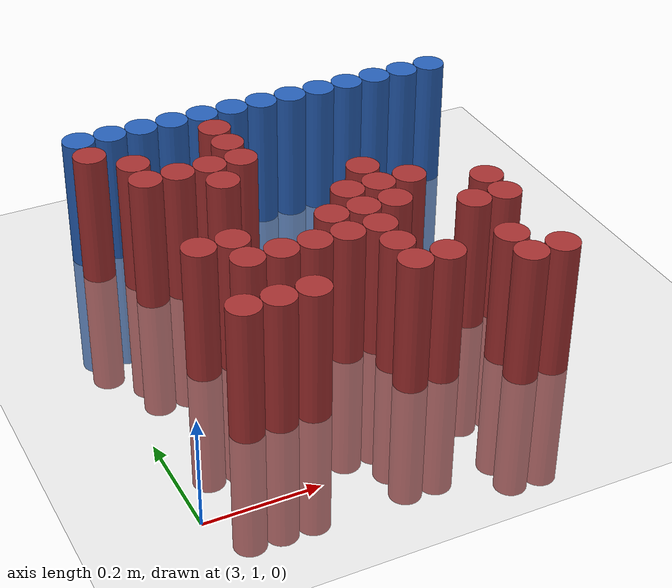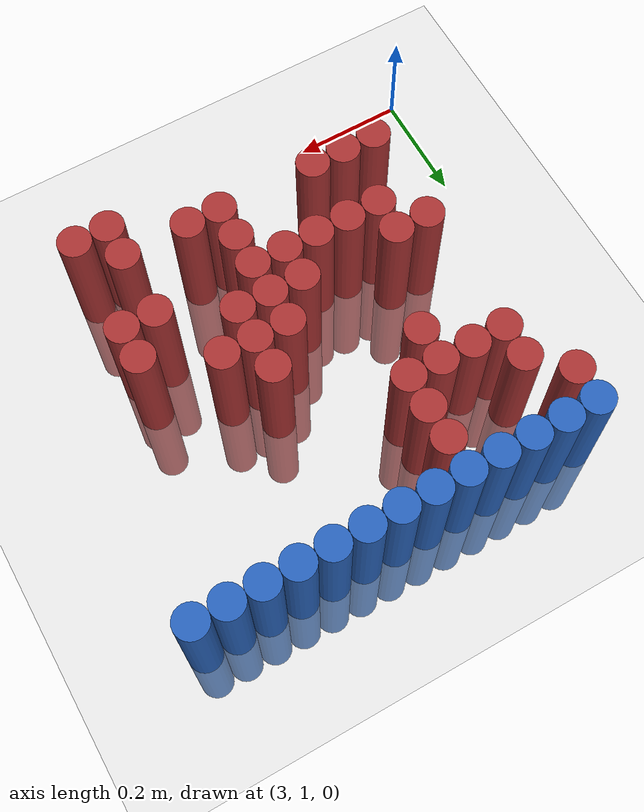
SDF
<sdf version="1.6">
 <world name="default">
  <model name="ground_plane">
   <static>1</static>
   <link name="link">
    <collision name="collision">
     <geometry><plane><normal>0 0 1</normal><size>100 100</size></plane></geometry>
     <surface><friction><ode><mu>100</mu><mu2>50</mu2></ode></friction></surface>
    </collision>
    <visual name="visual">
     <cast_shadows>0</cast_shadows>
     <geometry><plane><normal>0 0 1</normal><size>100 100</size></plane></geometry>
     <material>
      <script><uri>file://media/materials/scripts/gazebo.material</uri><name>Gazebo/Grey</name></script>
     </material>
    </visual>
   </link>
  </model>
  <model name="unit_cylinder_112">
   <static>1</static>
   <pose>3.090000 1.770000 0.000000 0.000000 0.000000 0.000000</pose>
   <link name="link">
    <inertial>
     <mass>1</mass>
     <inertia><ixx>0.145833</ixx><ixy>0</ixy><ixz>0</ixz><iyy>0.145833</iyy><iyz>0</iyz><izz>0.125</izz></inertia>
    </inertial>
    <collision name="collision">
     <geometry><cylinder><radius>0.030000</radius><length>0.5</length></cylinder></geometry>
    </collision>
    <visual name="visual">
     <geometry><cylinder><radius>0.030000</radius><length>0.5</length></cylinder></geometry>
     <material>
      <ambient>0.152000 0.379000 0.720000 1</ambient>
      <diffuse>0.152000 0.379000 0.720000 1</diffuse>
     </material>
     <material>
      <script><name>Gazebo/Grey</name><uri>file://media/materials/scripts/gazebo.material</uri></script>
     </material>
    </visual>
   </link>
  </model>
  <model name="unit_cylinder_113">
   <static>1</static>
   <pose>3.150000 1.770000 0.000000 0.000000 0.000000 0.000000</pose>
   <link name="link">
    <inertial>
     <mass>1</mass>
     <inertia><ixx>0.145833</ixx><ixy>0</ixy><ixz>0</ixz><iyy>0.145833</iyy><iyz>0</iyz><izz>0.125</izz></inertia>
    </inertial>
    <collision name="collision">
     <geometry><cylinder><radius>0.030000</radius><length>0.5</length></cylinder></geometry>
    </collision>
    <visual name="visual">
     <geometry><cylinder><radius>0.030000</radius><length>0.5</length></cylinder></geometry>
     <material>
      <ambient>0.152000 0.379000 0.720000 1</ambient>
      <diffuse>0.152000 0.379000 0.720000 1</diffuse>
     </material>
     <material>
      <script><name>Gazebo/Grey</name><uri>file://media/materials/scripts/gazebo.material</uri></script>
     </material>
    </visual>
   </link>
  </model>
  <model name="unit_cylinder_114">
   <static>1</static>
   <pose>3.210000 1.770000 0.000000 0.000000 0.000000 0.000000</pose>
   <link name="link">
    <inertial>
     <mass>1</mass>
     <inertia><ixx>0.145833</ixx><ixy>0</ixy><ixz>0</ixz><iyy>0.145833</iyy><iyz>0</iyz><izz>0.125</izz></inertia>
    </inertial>
    <collision name="collision">
     <geometry><cylinder><radius>0.030000</radius><length>0.5</length></cylinder></geometry>
    </collision>
    <visual name="visual">
     <geometry><cylinder><radius>0.030000</radius><length>0.5</length></cylinder></geometry>
     <material>
      <ambient>0.152000 0.379000 0.720000 1</ambient>
      <diffuse>0.152000 0.379000 0.720000 1</diffuse>
     </material>
     <material>
      <script><name>Gazebo/Grey</name><uri>file://media/materials/scripts/gazebo.material</uri></script>
     </material>
    </visual>
   </link>
  </model>
  <model name="unit_cylinder_115">
   <static>1</static>
   <pose>3.270000 1.770000 0.000000 0.000000 0.000000 0.000000</pose>
   <link name="link">
    <inertial>
     <mass>1</mass>
     <inertia><ixx>0.145833</ixx><ixy>0</ixy><ixz>0</ixz><iyy>0.145833</iyy><iyz>0</iyz><izz>0.125</izz></inertia>
    </inertial>
    <collision name="collision">
     <geometry><cylinder><radius>0.030000</radius><length>0.5</length></cylinder></geometry>
    </collision>
    <visual name="visual">
     <geometry><cylinder><radius>0.030000</radius><length>0.5</length></cylinder></geometry>
     <material>
      <ambient>0.152000 0.379000 0.720000 1</ambient>
      <diffuse>0.152000 0.379000 0.720000 1</diffuse>
     </material>
     <material>
      <script><name>Gazebo/Grey</name><uri>file://media/materials/scripts/gazebo.material</uri></script>
     </material>
    </visual>
   </link>
  </model>
  <model name="unit_cylinder_116">
   <static>1</static>
   <pose>3.330000 1.770000 0.000000 0.000000 0.000000 0.000000</pose>
   <link name="link">
    <inertial>
     <mass>1</mass>
     <inertia><ixx>0.145833</ixx><ixy>0</ixy><ixz>0</ixz><iyy>0.145833</iyy><iyz>0</iyz><izz>0.125</izz></inertia>
    </inertial>
    <collision name="collision">
     <geometry><cylinder><radius>0.030000</radius><length>0.5</length></cylinder></geometry>
    </collision>
    <visual name="visual">
     <geometry><cylinder><radius>0.030000</radius><length>0.5</length></cylinder></geometry>
     <material>
      <ambient>0.152000 0.379000 0.720000 1</ambient>
      <diffuse>0.152000 0.379000 0.720000 1</diffuse>
     </material>
     <material>
      <script><name>Gazebo/Grey</name><uri>file://media/materials/scripts/gazebo.material</uri></script>
     </material>
    </visual>
   </link>
  </model>
  <model name="unit_cylinder_117">
   <static>1</static>
   <pose>3.390000 1.770000 0.000000 0.000000 0.000000 0.000000</pose>
   <link name="link">
    <inertial>
     <mass>1</mass>
     <inertia><ixx>0.145833</ixx><ixy>0</ixy><ixz>0</ixz><iyy>0.145833</iyy><iyz>0</iyz><izz>0.125</izz></inertia>
    </inertial>
    <collision name="collision">
     <geometry><cylinder><radius>0.030000</radius><length>0.5</length></cylinder></geometry>
    </collision>
    <visual name="visual">
     <geometry><cylinder><radius>0.030000</radius><length>0.5</length></cylinder></geometry>
     <material>
      <ambient>0.152000 0.379000 0.720000 1</ambient>
      <diffuse>0.152000 0.379000 0.720000 1</diffuse>
     </material>
     <material>
      <script><name>Gazebo/Grey</name><uri>file://media/materials/scripts/gazebo.material</uri></script>
     </material>
    </visual>
   </link>
  </model>
  <model name="unit_cylinder_118">
   <static>1</static>
   <pose>3.450000 1.770000 0.000000 0.000000 0.000000 0.000000</pose>
   <link name="link">
    <inertial>
     <mass>1</mass>
     <inertia><ixx>0.145833</ixx><ixy>0</ixy><ixz>0</ixz><iyy>0.145833</iyy><iyz>0</iyz><izz>0.125</izz></inertia>
    </inertial>
    <collision name="collision">
     <geometry><cylinder><radius>0.030000</radius><length>0.5</length></cylinder></geometry>
    </collision>
    <visual name="visual">
     <geometry><cylinder><radius>0.030000</radius><length>0.5</length></cylinder></geometry>
     <material>
      <ambient>0.152000 0.379000 0.720000 1</ambient>
      <diffuse>0.152000 0.379000 0.720000 1</diffuse>
     </material>
     <material>
      <script><name>Gazebo/Grey</name><uri>file://media/materials/scripts/gazebo.material</uri></script>
     </material>
    </visual>
   </link>
  </model>
  <model name="unit_cylinder_119">
   <static>1</static>
   <pose>3.510000 1.770000 0.000000 0.000000 0.000000 0.000000</pose>
   <link name="link">
    <inertial>
     <mass>1</mass>
     <inertia><ixx>0.145833</ixx><ixy>0</ixy><ixz>0</ixz><iyy>0.145833</iyy><iyz>0</iyz><izz>0.125</izz></inertia>
    </inertial>
    <collision name="collision">
     <geometry><cylinder><radius>0.030000</radius><length>0.5</length></cylinder></geometry>
    </collision>
    <visual name="visual">
     <geometry><cylinder><radius>0.030000</radius><length>0.5</length></cylinder></geometry>
     <material>
      <ambient>0.152000 0.379000 0.720000 1</ambient>
      <diffuse>0.152000 0.379000 0.720000 1</diffuse>
     </material>
     <material>
      <script><name>Gazebo/Grey</name><uri>file://media/materials/scripts/gazebo.material</uri></script>
     </material>
    </visual>
   </link>
  </model>
  <model name="unit_cylinder_120">
   <static>1</static>
   <pose>3.570000 1.770000 0.000000 0.000000 0.000000 0.000000</pose>
   <link name="link">
    <inertial>
     <mass>1</mass>
     <inertia><ixx>0.145833</ixx><ixy>0</ixy><ixz>0</ixz><iyy>0.145833</iyy><iyz>0</iyz><izz>0.125</izz></inertia>
    </inertial>
    <collision name="collision">
     <geometry><cylinder><radius>0.030000</radius><length>0.5</length></cylinder></geometry>
    </collision>
    <visual name="visual">
     <geometry><cylinder><radius>0.030000</radius><length>0.5</length></cylinder></geometry>
     <material>
      <ambient>0.152000 0.379000 0.720000 1</ambient>
      <diffuse>0.152000 0.379000 0.720000 1</diffuse>
     </material>
     <material>
      <script><name>Gazebo/Grey</name><uri>file://media/materials/scripts/gazebo.material</uri></script>
     </material>
    </visual>
   </link>
  </model>
  <model name="unit_cylinder_121">
   <static>1</static>
   <pose>3.630000 1.770000 0.000000 0.000000 0.000000 0.000000</pose>
   <link name="link">
    <inertial>
     <mass>1</mass>
     <inertia><ixx>0.145833</ixx><ixy>0</ixy><ixz>0</ixz><iyy>0.145833</iyy><iyz>0</iyz><izz>0.125</izz></inertia>
    </inertial>
    <collision name="collision">
     <geometry><cylinder><radius>0.030000</radius><length>0.5</length></cylinder></geometry>
    </collision>
    <visual name="visual">
     <geometry><cylinder><radius>0.030000</radius><length>0.5</length></cylinder></geometry>
     <material>
      <ambient>0.152000 0.379000 0.720000 1</ambient>
      <diffuse>0.152000 0.379000 0.720000 1</diffuse>
     </material>
     <material>
      <script><name>Gazebo/Grey</name><uri>file://media/materials/scripts/gazebo.material</uri></script>
     </material>
    </visual>
   </link>
  </model>
  <model name="unit_cylinder_122">
   <static>1</static>
   <pose>3.690000 1.770000 0.000000 0.000000 0.000000 0.000000</pose>
   <link name="link">
    <inertial>
     <mass>1</mass>
     <inertia><ixx>0.145833</ixx><ixy>0</ixy><ixz>0</ixz><iyy>0.145833</iyy><iyz>0</iyz><izz>0.125</izz></inertia>
    </inertial>
    <collision name="collision">
     <geometry><cylinder><radius>0.030000</radius><length>0.5</length></cylinder></geometry>
    </collision>
    <visual name="visual">
     <geometry><cylinder><radius>0.030000</radius><length>0.5</length></cylinder></geometry>
     <material>
      <ambient>0.152000 0.379000 0.720000 1</ambient>
      <diffuse>0.152000 0.379000 0.720000 1</diffuse>
     </material>
     <material>
      <script><name>Gazebo/Grey</name><uri>file://media/materials/scripts/gazebo.material</uri></script>
     </material>
    </visual>
   </link>
  </model>
  <model name="unit_cylinder_123">
   <static>1</static>
   <pose>3.750000 1.770000 0.000000 0.000000 0.000000 0.000000</pose>
   <link name="link">
    <inertial>
     <mass>1</mass>
     <inertia><ixx>0.145833</ixx><ixy>0</ixy><ixz>0</ixz><iyy>0.145833</iyy><iyz>0</iyz><izz>0.125</izz></inertia>
    </inertial>
    <collision name="collision">
     <geometry><cylinder><radius>0.030000</radius><length>0.5</length></cylinder></geometry>
    </collision>
    <visual name="visual">
     <geometry><cylinder><radius>0.030000</radius><length>0.5</length></cylinder></geometry>
     <material>
      <ambient>0.152000 0.379000 0.720000 1</ambient>
      <diffuse>0.152000 0.379000 0.720000 1</diffuse>
     </material>
     <material>
      <script><name>Gazebo/Grey</name><uri>file://media/materials/scripts/gazebo.material</uri></script>
     </material>
    </visual>
   </link>
  </model>
  <model name="unit_cylinder_124">
   <static>1</static>
   <pose>3.810000 1.770000 0.000000 0.000000 0.000000 0.000000</pose>
   <link name="link">
    <inertial>
     <mass>1</mass>
     <inertia><ixx>0.145833</ixx><ixy>0</ixy><ixz>0</ixz><iyy>0.145833</iyy><iyz>0</iyz><izz>0.125</izz></inertia>
    </inertial>
    <collision name="collision">
     <geometry><cylinder><radius>0.030000</radius><length>0.5</length></cylinder></geometry>
    </collision>
    <visual name="visual">
     <geometry><cylinder><radius>0.030000</radius><length>0.5</length></cylinder></geometry>
     <material>
      <ambient>0.152000 0.379000 0.720000 1</ambient>
      <diffuse>0.152000 0.379000 0.720000 1</diffuse>
     </material>
     <material>
      <script><name>Gazebo/Grey</name><uri>file://media/materials/scripts/gazebo.material</uri></script>
     </material>
    </visual>
   </link>
  </model>
  <model name="unit_cylinder_132">
   <static>1</static>
   <pose>3.090000 1.710000 0.000000 0.000000 0.000000 0.000000</pose>
   <link name="link">
    <inertial>
     <mass>1</mass>
     <inertia><ixx>0.145833</ixx><ixy>0</ixy><ixz>0</ixz><iyy>0.145833</iyy><iyz>0</iyz><izz>0.125</izz></inertia>
    </inertial>
    <collision name="collision">
     <geometry><cylinder><radius>0.030000</radius><length>0.5</length></cylinder></geometry>
    </collision>
    <visual name="visual">
     <geometry><cylinder><radius>0.030000</radius><length>0.5</length></cylinder></geometry>
     <material>
      <ambient>0.648000 0.192000 0.192000 1</ambient>
      <diffuse>0.648000 0.192000 0.192000 1</diffuse>
     </material>
     <material>
      <script><name>Gazebo/Grey</name><uri>file://media/materials/scripts/gazebo.material</uri></script>
     </material>
    </visual>
   </link>
  </model>
  <model name="unit_cylinder_133">
   <static>1</static>
   <pose>3.330000 1.710000 0.000000 0.000000 0.000000 0.000000</pose>
   <link name="link">
    <inertial>
     <mass>1</mass>
     <inertia><ixx>0.145833</ixx><ixy>0</ixy><ixz>0</ixz><iyy>0.145833</iyy><iyz>0</iyz><izz>0.125</izz></inertia>
    </inertial>
    <collision name="collision">
     <geometry><cylinder><radius>0.030000</radius><length>0.5</length></cylinder></geometry>
    </collision>
    <visual name="visual">
     <geometry><cylinder><radius>0.030000</radius><length>0.5</length></cylinder></geometry>
     <material>
      <ambient>0.648000 0.192000 0.192000 1</ambient>
      <diffuse>0.648000 0.192000 0.192000 1</diffuse>
     </material>
     <material>
      <script><name>Gazebo/Grey</name><uri>file://media/materials/scripts/gazebo.material</uri></script>
     </material>
    </visual>
   </link>
  </model>
  <model name="unit_cylinder_141">
   <static>1</static>
   <pose>3.150000 1.650000 0.000000 0.000000 0.000000 0.000000</pose>
   <link name="link">
    <inertial>
     <mass>1</mass>
     <inertia><ixx>0.145833</ixx><ixy>0</ixy><ixz>0</ixz><iyy>0.145833</iyy><iyz>0</iyz><izz>0.125</izz></inertia>
    </inertial>
    <collision name="collision">
     <geometry><cylinder><radius>0.030000</radius><length>0.5</length></cylinder></geometry>
    </collision>
    <visual name="visual">
     <geometry><cylinder><radius>0.030000</radius><length>0.5</length></cylinder></geometry>
     <material>
      <ambient>0.648000 0.192000 0.192000 1</ambient>
      <diffuse>0.648000 0.192000 0.192000 1</diffuse>
     </material>
     <material>
      <script><name>Gazebo/Grey</name><uri>file://media/materials/scripts/gazebo.material</uri></script>
     </material>
    </visual>
   </link>
  </model>
  <model name="unit_cylinder_142">
   <static>1</static>
   <pose>3.330000 1.650000 0.000000 0.000000 0.000000 0.000000</pose>
   <link name="link">
    <inertial>
     <mass>1</mass>
     <inertia><ixx>0.145833</ixx><ixy>0</ixy><ixz>0</ixz><iyy>0.145833</iyy><iyz>0</iyz><izz>0.125</izz></inertia>
    </inertial>
    <collision name="collision">
     <geometry><cylinder><radius>0.030000</radius><length>0.5</length></cylinder></geometry>
    </collision>
    <visual name="visual">
     <geometry><cylinder><radius>0.030000</radius><length>0.5</length></cylinder></geometry>
     <material>
      <ambient>0.648000 0.192000 0.192000 1</ambient>
      <diffuse>0.648000 0.192000 0.192000 1</diffuse>
     </material>
     <material>
      <script><name>Gazebo/Grey</name><uri>file://media/materials/scripts/gazebo.material</uri></script>
     </material>
    </visual>
   </link>
  </model>
  <model name="unit_cylinder_147">
   <static>1</static>
   <pose>3.150000 1.590000 0.000000 0.000000 0.000000 0.000000</pose>
   <link name="link">
    <inertial>
     <mass>1</mass>
     <inertia><ixx>0.145833</ixx><ixy>0</ixy><ixz>0</ixz><iyy>0.145833</iyy><iyz>0</iyz><izz>0.125</izz></inertia>
    </inertial>
    <collision name="collision">
     <geometry><cylinder><radius>0.030000</radius><length>0.5</length></cylinder></geometry>
    </collision>
    <visual name="visual">
     <geometry><cylinder><radius>0.030000</radius><length>0.5</length></cylinder></geometry>
     <material>
      <ambient>0.648000 0.192000 0.192000 1</ambient>
      <diffuse>0.648000 0.192000 0.192000 1</diffuse>
     </material>
     <material>
      <script><name>Gazebo/Grey</name><uri>file://media/materials/scripts/gazebo.material</uri></script>
     </material>
    </visual>
   </link>
  </model>
  <model name="unit_cylinder_148">
   <static>1</static>
   <pose>3.210000 1.590000 0.000000 0.000000 0.000000 0.000000</pose>
   <link name="link">
    <inertial>
     <mass>1</mass>
     <inertia><ixx>0.145833</ixx><ixy>0</ixy><ixz>0</ixz><iyy>0.145833</iyy><iyz>0</iyz><izz>0.125</izz></inertia>
    </inertial>
    <collision name="collision">
     <geometry><cylinder><radius>0.030000</radius><length>0.5</length></cylinder></geometry>
    </collision>
    <visual name="visual">
     <geometry><cylinder><radius>0.030000</radius><length>0.5</length></cylinder></geometry>
     <material>
      <ambient>0.648000 0.192000 0.192000 1</ambient>
      <diffuse>0.648000 0.192000 0.192000 1</diffuse>
     </material>
     <material>
      <script><name>Gazebo/Grey</name><uri>file://media/materials/scripts/gazebo.material</uri></script>
     </material>
    </visual>
   </link>
  </model>
  <model name="unit_cylinder_149">
   <static>1</static>
   <pose>3.270000 1.590000 0.000000 0.000000 0.000000 0.000000</pose>
   <link name="link">
    <inertial>
     <mass>1</mass>
     <inertia><ixx>0.145833</ixx><ixy>0</ixy><ixz>0</ixz><iyy>0.145833</iyy><iyz>0</iyz><izz>0.125</izz></inertia>
    </inertial>
    <collision name="collision">
     <geometry><cylinder><radius>0.030000</radius><length>0.5</length></cylinder></geometry>
    </collision>
    <visual name="visual">
     <geometry><cylinder><radius>0.030000</radius><length>0.5</length></cylinder></geometry>
     <material>
      <ambient>0.648000 0.192000 0.192000 1</ambient>
      <diffuse>0.648000 0.192000 0.192000 1</diffuse>
     </material>
     <material>
      <script><name>Gazebo/Grey</name><uri>file://media/materials/scripts/gazebo.material</uri></script>
     </material>
    </visual>
   </link>
  </model>
  <model name="unit_cylinder_150">
   <static>1</static>
   <pose>3.330000 1.590000 0.000000 0.000000 0.000000 0.000000</pose>
   <link name="link">
    <inertial>
     <mass>1</mass>
     <inertia><ixx>0.145833</ixx><ixy>0</ixy><ixz>0</ixz><iyy>0.145833</iyy><iyz>0</iyz><izz>0.125</izz></inertia>
    </inertial>
    <collision name="collision">
     <geometry><cylinder><radius>0.030000</radius><length>0.5</length></cylinder></geometry>
    </collision>
    <visual name="visual">
     <geometry><cylinder><radius>0.030000</radius><length>0.5</length></cylinder></geometry>
     <material>
      <ambient>0.648000 0.192000 0.192000 1</ambient>
      <diffuse>0.648000 0.192000 0.192000 1</diffuse>
     </material>
     <material>
      <script><name>Gazebo/Grey</name><uri>file://media/materials/scripts/gazebo.material</uri></script>
     </material>
    </visual>
   </link>
  </model>
  <model name="unit_cylinder_157">
   <static>1</static>
   <pose>3.270000 1.530000 0.000000 0.000000 0.000000 0.000000</pose>
   <link name="link">
    <inertial>
     <mass>1</mass>
     <inertia><ixx>0.145833</ixx><ixy>0</ixy><ixz>0</ixz><iyy>0.145833</iyy><iyz>0</iyz><izz>0.125</izz></inertia>
    </inertial>
    <collision name="collision">
     <geometry><cylinder><radius>0.030000</radius><length>0.5</length></cylinder></geometry>
    </collision>
    <visual name="visual">
     <geometry><cylinder><radius>0.030000</radius><length>0.5</length></cylinder></geometry>
     <material>
      <ambient>0.648000 0.192000 0.192000 1</ambient>
      <diffuse>0.648000 0.192000 0.192000 1</diffuse>
     </material>
     <material>
      <script><name>Gazebo/Grey</name><uri>file://media/materials/scripts/gazebo.material</uri></script>
     </material>
    </visual>
   </link>
  </model>
  <model name="unit_cylinder_167">
   <static>1</static>
   <pose>3.510000 1.470000 0.000000 0.000000 0.000000 0.000000</pose>
   <link name="link">
    <inertial>
     <mass>1</mass>
     <inertia><ixx>0.145833</ixx><ixy>0</ixy><ixz>0</ixz><iyy>0.145833</iyy><iyz>0</iyz><izz>0.125</izz></inertia>
    </inertial>
    <collision name="collision">
     <geometry><cylinder><radius>0.030000</radius><length>0.5</length></cylinder></geometry>
    </collision>
    <visual name="visual">
     <geometry><cylinder><radius>0.030000</radius><length>0.5</length></cylinder></geometry>
     <material>
      <ambient>0.648000 0.192000 0.192000 1</ambient>
      <diffuse>0.648000 0.192000 0.192000 1</diffuse>
     </material>
     <material>
      <script><name>Gazebo/Grey</name><uri>file://media/materials/scripts/gazebo.material</uri></script>
     </material>
    </visual>
   </link>
  </model>
  <model name="unit_cylinder_174">
   <static>1</static>
   <pose>3.450000 1.410000 0.000000 0.000000 0.000000 0.000000</pose>
   <link name="link">
    <inertial>
     <mass>1</mass>
     <inertia><ixx>0.145833</ixx><ixy>0</ixy><ixz>0</ixz><iyy>0.145833</iyy><iyz>0</iyz><izz>0.125</izz></inertia>
    </inertial>
    <collision name="collision">
     <geometry><cylinder><radius>0.030000</radius><length>0.5</length></cylinder></geometry>
    </collision>
    <visual name="visual">
     <geometry><cylinder><radius>0.030000</radius><length>0.5</length></cylinder></geometry>
     <material>
      <ambient>0.648000 0.192000 0.192000 1</ambient>
      <diffuse>0.648000 0.192000 0.192000 1</diffuse>
     </material>
     <material>
      <script><name>Gazebo/Grey</name><uri>file://media/materials/scripts/gazebo.material</uri></script>
     </material>
    </visual>
   </link>
  </model>
  <model name="unit_cylinder_175">
   <static>1</static>
   <pose>3.510000 1.410000 0.000000 0.000000 0.000000 0.000000</pose>
   <link name="link">
    <inertial>
     <mass>1</mass>
     <inertia><ixx>0.145833</ixx><ixy>0</ixy><ixz>0</ixz><iyy>0.145833</iyy><iyz>0</iyz><izz>0.125</izz></inertia>
    </inertial>
    <collision name="collision">
     <geometry><cylinder><radius>0.030000</radius><length>0.5</length></cylinder></geometry>
    </collision>
    <visual name="visual">
     <geometry><cylinder><radius>0.030000</radius><length>0.5</length></cylinder></geometry>
     <material>
      <ambient>0.648000 0.192000 0.192000 1</ambient>
      <diffuse>0.648000 0.192000 0.192000 1</diffuse>
     </material>
     <material>
      <script><name>Gazebo/Grey</name><uri>file://media/materials/scripts/gazebo.material</uri></script>
     </material>
    </visual>
   </link>
  </model>
  <model name="unit_cylinder_176">
   <static>1</static>
   <pose>3.570000 1.410000 0.000000 0.000000 0.000000 0.000000</pose>
   <link name="link">
    <inertial>
     <mass>1</mass>
     <inertia><ixx>0.145833</ixx><ixy>0</ixy><ixz>0</ixz><iyy>0.145833</iyy><iyz>0</iyz><izz>0.125</izz></inertia>
    </inertial>
    <collision name="collision">
     <geometry><cylinder><radius>0.030000</radius><length>0.5</length></cylinder></geometry>
    </collision>
    <visual name="visual">
     <geometry><cylinder><radius>0.030000</radius><length>0.5</length></cylinder></geometry>
     <material>
      <ambient>0.648000 0.192000 0.192000 1</ambient>
      <diffuse>0.648000 0.192000 0.192000 1</diffuse>
     </material>
     <material>
      <script><name>Gazebo/Grey</name><uri>file://media/materials/scripts/gazebo.material</uri></script>
     </material>
    </visual>
   </link>
  </model>
  <model name="unit_cylinder_181">
   <static>1</static>
   <pose>3.150000 1.350000 0.000000 0.000000 0.000000 0.000000</pose>
   <link name="link">
    <inertial>
     <mass>1</mass>
     <inertia><ixx>0.145833</ixx><ixy>0</ixy><ixz>0</ixz><iyy>0.145833</iyy><iyz>0</iyz><izz>0.125</izz></inertia>
    </inertial>
    <collision name="collision">
     <geometry><cylinder><radius>0.030000</radius><length>0.5</length></cylinder></geometry>
    </collision>
    <visual name="visual">
     <geometry><cylinder><radius>0.030000</radius><length>0.5</length></cylinder></geometry>
     <material>
      <ambient>0.648000 0.192000 0.192000 1</ambient>
      <diffuse>0.648000 0.192000 0.192000 1</diffuse>
     </material>
     <material>
      <script><name>Gazebo/Grey</name><uri>file://media/materials/scripts/gazebo.material</uri></script>
     </material>
    </visual>
   </link>
  </model>
  <model name="unit_cylinder_182">
   <static>1</static>
   <pose>3.210000 1.350000 0.000000 0.000000 0.000000 0.000000</pose>
   <link name="link">
    <inertial>
     <mass>1</mass>
     <inertia><ixx>0.145833</ixx><ixy>0</ixy><ixz>0</ixz><iyy>0.145833</iyy><iyz>0</iyz><izz>0.125</izz></inertia>
    </inertial>
    <collision name="collision">
     <geometry><cylinder><radius>0.030000</radius><length>0.5</length></cylinder></geometry>
    </collision>
    <visual name="visual">
     <geometry><cylinder><radius>0.030000</radius><length>0.5</length></cylinder></geometry>
     <material>
      <ambient>0.648000 0.192000 0.192000 1</ambient>
      <diffuse>0.648000 0.192000 0.192000 1</diffuse>
     </material>
     <material>
      <script><name>Gazebo/Grey</name><uri>file://media/materials/scripts/gazebo.material</uri></script>
     </material>
    </visual>
   </link>
  </model>
  <model name="unit_cylinder_183">
   <static>1</static>
   <pose>3.390000 1.350000 0.000000 0.000000 0.000000 0.000000</pose>
   <link name="link">
    <inertial>
     <mass>1</mass>
     <inertia><ixx>0.145833</ixx><ixy>0</ixy><ixz>0</ixz><iyy>0.145833</iyy><iyz>0</iyz><izz>0.125</izz></inertia>
    </inertial>
    <collision name="collision">
     <geometry><cylinder><radius>0.030000</radius><length>0.5</length></cylinder></geometry>
    </collision>
    <visual name="visual">
     <geometry><cylinder><radius>0.030000</radius><length>0.5</length></cylinder></geometry>
     <material>
      <ambient>0.648000 0.192000 0.192000 1</ambient>
      <diffuse>0.648000 0.192000 0.192000 1</diffuse>
     </material>
     <material>
      <script><name>Gazebo/Grey</name><uri>file://media/materials/scripts/gazebo.material</uri></script>
     </material>
    </visual>
   </link>
  </model>
  <model name="unit_cylinder_184">
   <static>1</static>
   <pose>3.450000 1.350000 0.000000 0.000000 0.000000 0.000000</pose>
   <link name="link">
    <inertial>
     <mass>1</mass>
     <inertia><ixx>0.145833</ixx><ixy>0</ixy><ixz>0</ixz><iyy>0.145833</iyy><iyz>0</iyz><izz>0.125</izz></inertia>
    </inertial>
    <collision name="collision">
     <geometry><cylinder><radius>0.030000</radius><length>0.5</length></cylinder></geometry>
    </collision>
    <visual name="visual">
     <geometry><cylinder><radius>0.030000</radius><length>0.5</length></cylinder></geometry>
     <material>
      <ambient>0.648000 0.192000 0.192000 1</ambient>
      <diffuse>0.648000 0.192000 0.192000 1</diffuse>
     </material>
     <material>
      <script><name>Gazebo/Grey</name><uri>file://media/materials/scripts/gazebo.material</uri></script>
     </material>
    </visual>
   </link>
  </model>
  <model name="unit_cylinder_185">
   <static>1</static>
   <pose>3.510000 1.350000 0.000000 0.000000 0.000000 0.000000</pose>
   <link name="link">
    <inertial>
     <mass>1</mass>
     <inertia><ixx>0.145833</ixx><ixy>0</ixy><ixz>0</ixz><iyy>0.145833</iyy><iyz>0</iyz><izz>0.125</izz></inertia>
    </inertial>
    <collision name="collision">
     <geometry><cylinder><radius>0.030000</radius><length>0.5</length></cylinder></geometry>
    </collision>
    <visual name="visual">
     <geometry><cylinder><radius>0.030000</radius><length>0.5</length></cylinder></geometry>
     <material>
      <ambient>0.648000 0.192000 0.192000 1</ambient>
      <diffuse>0.648000 0.192000 0.192000 1</diffuse>
     </material>
     <material>
      <script><name>Gazebo/Grey</name><uri>file://media/materials/scripts/gazebo.material</uri></script>
     </material>
    </visual>
   </link>
  </model>
  <model name="unit_cylinder_186">
   <static>1</static>
   <pose>3.690000 1.350000 0.000000 0.000000 0.000000 0.000000</pose>
   <link name="link">
    <inertial>
     <mass>1</mass>
     <inertia><ixx>0.145833</ixx><ixy>0</ixy><ixz>0</ixz><iyy>0.145833</iyy><iyz>0</iyz><izz>0.125</izz></inertia>
    </inertial>
    <collision name="collision">
     <geometry><cylinder><radius>0.030000</radius><length>0.5</length></cylinder></geometry>
    </collision>
    <visual name="visual">
     <geometry><cylinder><radius>0.030000</radius><length>0.5</length></cylinder></geometry>
     <material>
      <ambient>0.648000 0.192000 0.192000 1</ambient>
      <diffuse>0.648000 0.192000 0.192000 1</diffuse>
     </material>
     <material>
      <script><name>Gazebo/Grey</name><uri>file://media/materials/scripts/gazebo.material</uri></script>
     </material>
    </visual>
   </link>
  </model>
  <model name="unit_cylinder_191">
   <static>1</static>
   <pose>3.210000 1.290000 0.000000 0.000000 0.000000 0.000000</pose>
   <link name="link">
    <inertial>
     <mass>1</mass>
     <inertia><ixx>0.145833</ixx><ixy>0</ixy><ixz>0</ixz><iyy>0.145833</iyy><iyz>0</iyz><izz>0.125</izz></inertia>
    </inertial>
    <collision name="collision">
     <geometry><cylinder><radius>0.030000</radius><length>0.5</length></cylinder></geometry>
    </collision>
    <visual name="visual">
     <geometry><cylinder><radius>0.030000</radius><length>0.5</length></cylinder></geometry>
     <material>
      <ambient>0.648000 0.192000 0.192000 1</ambient>
      <diffuse>0.648000 0.192000 0.192000 1</diffuse>
     </material>
     <material>
      <script><name>Gazebo/Grey</name><uri>file://media/materials/scripts/gazebo.material</uri></script>
     </material>
    </visual>
   </link>
  </model>
  <model name="unit_cylinder_192">
   <static>1</static>
   <pose>3.270000 1.290000 0.000000 0.000000 0.000000 0.000000</pose>
   <link name="link">
    <inertial>
     <mass>1</mass>
     <inertia><ixx>0.145833</ixx><ixy>0</ixy><ixz>0</ixz><iyy>0.145833</iyy><iyz>0</iyz><izz>0.125</izz></inertia>
    </inertial>
    <collision name="collision">
     <geometry><cylinder><radius>0.030000</radius><length>0.5</length></cylinder></geometry>
    </collision>
    <visual name="visual">
     <geometry><cylinder><radius>0.030000</radius><length>0.5</length></cylinder></geometry>
     <material>
      <ambient>0.648000 0.192000 0.192000 1</ambient>
      <diffuse>0.648000 0.192000 0.192000 1</diffuse>
     </material>
     <material>
      <script><name>Gazebo/Grey</name><uri>file://media/materials/scripts/gazebo.material</uri></script>
     </material>
    </visual>
   </link>
  </model>
  <model name="unit_cylinder_193">
   <static>1</static>
   <pose>3.330000 1.290000 0.000000 0.000000 0.000000 0.000000</pose>
   <link name="link">
    <inertial>
     <mass>1</mass>
     <inertia><ixx>0.145833</ixx><ixy>0</ixy><ixz>0</ixz><iyy>0.145833</iyy><iyz>0</iyz><izz>0.125</izz></inertia>
    </inertial>
    <collision name="collision">
     <geometry><cylinder><radius>0.030000</radius><length>0.5</length></cylinder></geometry>
    </collision>
    <visual name="visual">
     <geometry><cylinder><radius>0.030000</radius><length>0.5</length></cylinder></geometry>
     <material>
      <ambient>0.648000 0.192000 0.192000 1</ambient>
      <diffuse>0.648000 0.192000 0.192000 1</diffuse>
     </material>
     <material>
      <script><name>Gazebo/Grey</name><uri>file://media/materials/scripts/gazebo.material</uri></script>
     </material>
    </visual>
   </link>
  </model>
  <model name="unit_cylinder_194">
   <static>1</static>
   <pose>3.390000 1.290000 0.000000 0.000000 0.000000 0.000000</pose>
   <link name="link">
    <inertial>
     <mass>1</mass>
     <inertia><ixx>0.145833</ixx><ixy>0</ixy><ixz>0</ixz><iyy>0.145833</iyy><iyz>0</iyz><izz>0.125</izz></inertia>
    </inertial>
    <collision name="collision">
     <geometry><cylinder><radius>0.030000</radius><length>0.5</length></cylinder></geometry>
    </collision>
    <visual name="visual">
     <geometry><cylinder><radius>0.030000</radius><length>0.5</length></cylinder></geometry>
     <material>
      <ambient>0.648000 0.192000 0.192000 1</ambient>
      <diffuse>0.648000 0.192000 0.192000 1</diffuse>
     </material>
     <material>
      <script><name>Gazebo/Grey</name><uri>file://media/materials/scripts/gazebo.material</uri></script>
     </material>
    </visual>
   </link>
  </model>
  <model name="unit_cylinder_195">
   <static>1</static>
   <pose>3.450000 1.290000 0.000000 0.000000 0.000000 0.000000</pose>
   <link name="link">
    <inertial>
     <mass>1</mass>
     <inertia><ixx>0.145833</ixx><ixy>0</ixy><ixz>0</ixz><iyy>0.145833</iyy><iyz>0</iyz><izz>0.125</izz></inertia>
    </inertial>
    <collision name="collision">
     <geometry><cylinder><radius>0.030000</radius><length>0.5</length></cylinder></geometry>
    </collision>
    <visual name="visual">
     <geometry><cylinder><radius>0.030000</radius><length>0.5</length></cylinder></geometry>
     <material>
      <ambient>0.648000 0.192000 0.192000 1</ambient>
      <diffuse>0.648000 0.192000 0.192000 1</diffuse>
     </material>
     <material>
      <script><name>Gazebo/Grey</name><uri>file://media/materials/scripts/gazebo.material</uri></script>
     </material>
    </visual>
   </link>
  </model>
  <model name="unit_cylinder_196">
   <static>1</static>
   <pose>3.630000 1.290000 0.000000 0.000000 0.000000 0.000000</pose>
   <link name="link">
    <inertial>
     <mass>1</mass>
     <inertia><ixx>0.145833</ixx><ixy>0</ixy><ixz>0</ixz><iyy>0.145833</iyy><iyz>0</iyz><izz>0.125</izz></inertia>
    </inertial>
    <collision name="collision">
     <geometry><cylinder><radius>0.030000</radius><length>0.5</length></cylinder></geometry>
    </collision>
    <visual name="visual">
     <geometry><cylinder><radius>0.030000</radius><length>0.5</length></cylinder></geometry>
     <material>
      <ambient>0.648000 0.192000 0.192000 1</ambient>
      <diffuse>0.648000 0.192000 0.192000 1</diffuse>
     </material>
     <material>
      <script><name>Gazebo/Grey</name><uri>file://media/materials/scripts/gazebo.material</uri></script>
     </material>
    </visual>
   </link>
  </model>
  <model name="unit_cylinder_197">
   <static>1</static>
   <pose>3.690000 1.290000 0.000000 0.000000 0.000000 0.000000</pose>
   <link name="link">
    <inertial>
     <mass>1</mass>
     <inertia><ixx>0.145833</ixx><ixy>0</ixy><ixz>0</ixz><iyy>0.145833</iyy><iyz>0</iyz><izz>0.125</izz></inertia>
    </inertial>
    <collision name="collision">
     <geometry><cylinder><radius>0.030000</radius><length>0.5</length></cylinder></geometry>
    </collision>
    <visual name="visual">
     <geometry><cylinder><radius>0.030000</radius><length>0.5</length></cylinder></geometry>
     <material>
      <ambient>0.648000 0.192000 0.192000 1</ambient>
      <diffuse>0.648000 0.192000 0.192000 1</diffuse>
     </material>
     <material>
      <script><name>Gazebo/Grey</name><uri>file://media/materials/scripts/gazebo.material</uri></script>
     </material>
    </visual>
   </link>
  </model>
  <model name="unit_cylinder_200">
   <static>1</static>
   <pose>3.450000 1.230000 0.000000 0.000000 0.000000 0.000000</pose>
   <link name="link">
    <inertial>
     <mass>1</mass>
     <inertia><ixx>0.145833</ixx><ixy>0</ixy><ixz>0</ixz><iyy>0.145833</iyy><iyz>0</iyz><izz>0.125</izz></inertia>
    </inertial>
    <collision name="collision">
     <geometry><cylinder><radius>0.030000</radius><length>0.5</length></cylinder></geometry>
    </collision>
    <visual name="visual">
     <geometry><cylinder><radius>0.030000</radius><length>0.5</length></cylinder></geometry>
     <material>
      <ambient>0.648000 0.192000 0.192000 1</ambient>
      <diffuse>0.648000 0.192000 0.192000 1</diffuse>
     </material>
     <material>
      <script><name>Gazebo/Grey</name><uri>file://media/materials/scripts/gazebo.material</uri></script>
     </material>
    </visual>
   </link>
  </model>
  <model name="unit_cylinder_202">
   <static>1</static>
   <pose>3.150000 1.170000 0.000000 0.000000 0.000000 0.000000</pose>
   <link name="link">
    <inertial>
     <mass>1</mass>
     <inertia><ixx>0.145833</ixx><ixy>0</ixy><ixz>0</ixz><iyy>0.145833</iyy><iyz>0</iyz><izz>0.125</izz></inertia>
    </inertial>
    <collision name="collision">
     <geometry><cylinder><radius>0.030000</radius><length>0.5</length></cylinder></geometry>
    </collision>
    <visual name="visual">
     <geometry><cylinder><radius>0.030000</radius><length>0.5</length></cylinder></geometry>
     <material>
      <ambient>0.648000 0.192000 0.192000 1</ambient>
      <diffuse>0.648000 0.192000 0.192000 1</diffuse>
     </material>
     <material>
      <script><name>Gazebo/Grey</name><uri>file://media/materials/scripts/gazebo.material</uri></script>
     </material>
    </visual>
   </link>
  </model>
  <model name="unit_cylinder_203">
   <static>1</static>
   <pose>3.210000 1.170000 0.000000 0.000000 0.000000 0.000000</pose>
   <link name="link">
    <inertial>
     <mass>1</mass>
     <inertia><ixx>0.145833</ixx><ixy>0</ixy><ixz>0</ixz><iyy>0.145833</iyy><iyz>0</iyz><izz>0.125</izz></inertia>
    </inertial>
    <collision name="collision">
     <geometry><cylinder><radius>0.030000</radius><length>0.5</length></cylinder></geometry>
    </collision>
    <visual name="visual">
     <geometry><cylinder><radius>0.030000</radius><length>0.5</length></cylinder></geometry>
     <material>
      <ambient>0.648000 0.192000 0.192000 1</ambient>
      <diffuse>0.648000 0.192000 0.192000 1</diffuse>
     </material>
     <material>
      <script><name>Gazebo/Grey</name><uri>file://media/materials/scripts/gazebo.material</uri></script>
     </material>
    </visual>
   </link>
  </model>
  <model name="unit_cylinder_204">
   <static>1</static>
   <pose>3.270000 1.170000 0.000000 0.000000 0.000000 0.000000</pose>
   <link name="link">
    <inertial>
     <mass>1</mass>
     <inertia><ixx>0.145833</ixx><ixy>0</ixy><ixz>0</ixz><iyy>0.145833</iyy><iyz>0</iyz><izz>0.125</izz></inertia>
    </inertial>
    <collision name="collision">
     <geometry><cylinder><radius>0.030000</radius><length>0.5</length></cylinder></geometry>
    </collision>
    <visual name="visual">
     <geometry><cylinder><radius>0.030000</radius><length>0.5</length></cylinder></geometry>
     <material>
      <ambient>0.648000 0.192000 0.192000 1</ambient>
      <diffuse>0.648000 0.192000 0.192000 1</diffuse>
     </material>
     <material>
      <script><name>Gazebo/Grey</name><uri>file://media/materials/scripts/gazebo.material</uri></script>
     </material>
    </visual>
   </link>
  </model>
  <model name="unit_cylinder_205">
   <static>1</static>
   <pose>3.450000 1.170000 0.000000 0.000000 0.000000 0.000000</pose>
   <link name="link">
    <inertial>
     <mass>1</mass>
     <inertia><ixx>0.145833</ixx><ixy>0</ixy><ixz>0</ixz><iyy>0.145833</iyy><iyz>0</iyz><izz>0.125</izz></inertia>
    </inertial>
    <collision name="collision">
     <geometry><cylinder><radius>0.030000</radius><length>0.5</length></cylinder></geometry>
    </collision>
    <visual name="visual">
     <geometry><cylinder><radius>0.030000</radius><length>0.5</length></cylinder></geometry>
     <material>
      <ambient>0.648000 0.192000 0.192000 1</ambient>
      <diffuse>0.648000 0.192000 0.192000 1</diffuse>
     </material>
     <material>
      <script><name>Gazebo/Grey</name><uri>file://media/materials/scripts/gazebo.material</uri></script>
     </material>
    </visual>
   </link>
  </model>
  <model name="unit_cylinder_206">
   <static>1</static>
   <pose>3.510000 1.170000 0.000000 0.000000 0.000000 0.000000</pose>
   <link name="link">
    <inertial>
     <mass>1</mass>
     <inertia><ixx>0.145833</ixx><ixy>0</ixy><ixz>0</ixz><iyy>0.145833</iyy><iyz>0</iyz><izz>0.125</izz></inertia>
    </inertial>
    <collision name="collision">
     <geometry><cylinder><radius>0.030000</radius><length>0.5</length></cylinder></geometry>
    </collision>
    <visual name="visual">
     <geometry><cylinder><radius>0.030000</radius><length>0.5</length></cylinder></geometry>
     <material>
      <ambient>0.648000 0.192000 0.192000 1</ambient>
      <diffuse>0.648000 0.192000 0.192000 1</diffuse>
     </material>
     <material>
      <script><name>Gazebo/Grey</name><uri>file://media/materials/scripts/gazebo.material</uri></script>
     </material>
    </visual>
   </link>
  </model>
  <model name="unit_cylinder_207">
   <static>1</static>
   <pose>3.630000 1.170000 0.000000 0.000000 0.000000 0.000000</pose>
   <link name="link">
    <inertial>
     <mass>1</mass>
     <inertia><ixx>0.145833</ixx><ixy>0</ixy><ixz>0</ixz><iyy>0.145833</iyy><iyz>0</iyz><izz>0.125</izz></inertia>
    </inertial>
    <collision name="collision">
     <geometry><cylinder><radius>0.030000</radius><length>0.5</length></cylinder></geometry>
    </collision>
    <visual name="visual">
     <geometry><cylinder><radius>0.030000</radius><length>0.5</length></cylinder></geometry>
     <material>
      <ambient>0.648000 0.192000 0.192000 1</ambient>
      <diffuse>0.648000 0.192000 0.192000 1</diffuse>
     </material>
     <material>
      <script><name>Gazebo/Grey</name><uri>file://media/materials/scripts/gazebo.material</uri></script>
     </material>
    </visual>
   </link>
  </model>
  <model name="unit_cylinder_213">
   <static>1</static>
   <pose>3.630000 1.110000 0.000000 0.000000 0.000000 0.000000</pose>
   <link name="link">
    <inertial>
     <mass>1</mass>
     <inertia><ixx>0.145833</ixx><ixy>0</ixy><ixz>0</ixz><iyy>0.145833</iyy><iyz>0</iyz><izz>0.125</izz></inertia>
    </inertial>
    <collision name="collision">
     <geometry><cylinder><radius>0.030000</radius><length>0.5</length></cylinder></geometry>
    </collision>
    <visual name="visual">
     <geometry><cylinder><radius>0.030000</radius><length>0.5</length></cylinder></geometry>
     <material>
      <ambient>0.648000 0.192000 0.192000 1</ambient>
      <diffuse>0.648000 0.192000 0.192000 1</diffuse>
     </material>
     <material>
      <script><name>Gazebo/Grey</name><uri>file://media/materials/scripts/gazebo.material</uri></script>
     </material>
    </visual>
   </link>
  </model>
  <model name="unit_cylinder_214">
   <static>1</static>
   <pose>3.690000 1.110000 0.000000 0.000000 0.000000 0.000000</pose>
   <link name="link">
    <inertial>
     <mass>1</mass>
     <inertia><ixx>0.145833</ixx><ixy>0</ixy><ixz>0</ixz><iyy>0.145833</iyy><iyz>0</iyz><izz>0.125</izz></inertia>
    </inertial>
    <collision name="collision">
     <geometry><cylinder><radius>0.030000</radius><length>0.5</length></cylinder></geometry>
    </collision>
    <visual name="visual">
     <geometry><cylinder><radius>0.030000</radius><length>0.5</length></cylinder></geometry>
     <material>
      <ambient>0.648000 0.192000 0.192000 1</ambient>
      <diffuse>0.648000 0.192000 0.192000 1</diffuse>
     </material>
     <material>
      <script><name>Gazebo/Grey</name><uri>file://media/materials/scripts/gazebo.material</uri></script>
     </material>
    </visual>
   </link>
  </model>
 </world>
</sdf>
